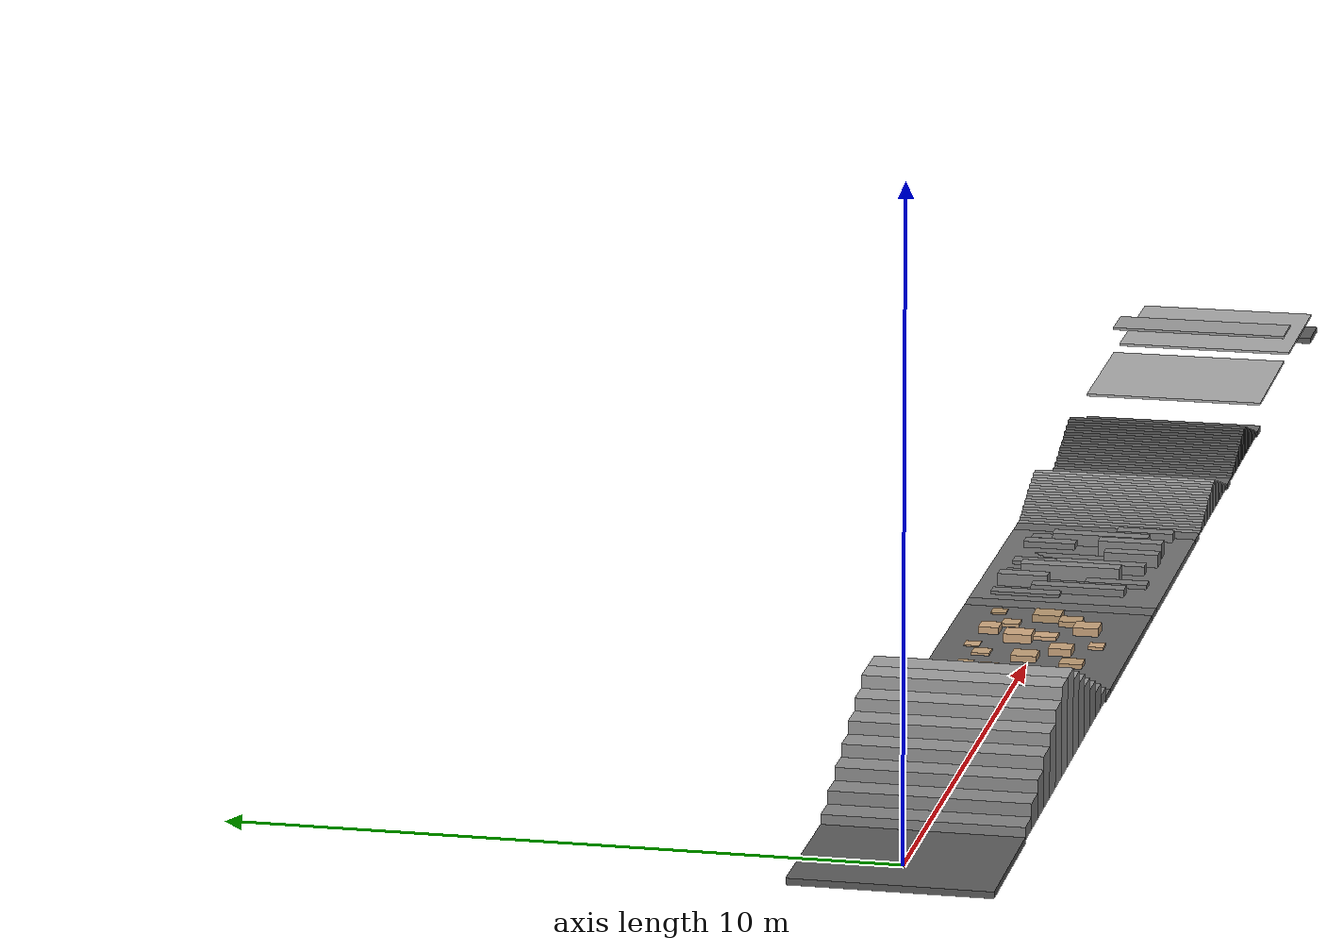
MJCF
<?xml version="1.0" encoding="UTF-8" ?>
<mujoco model="multi_terrain_course">
    <default>
        <default class="terrain">
            <geom type="box" contype="1" conaffinity="1" condim="3" friction="1 0.01 0.01" rgba="0.55 0.55 0.55 1"/>
        </default>
    </default>

    <worldbody>

        <geom name="start_pad" class="terrain" pos="0.25 0 0" size="1.25 1.5 0.05" rgba="0.36 0.36 0.36 1"/>

        <!-- single stairs: up 7 and down 7, 0.2 height difference -->
        <geom name="pyramid_stairs_1" class="terrain" pos="1.75 0 0.1" size="0.25 1.5 0.1" rgba="0.52 0.52 0.52 1"/>
        <geom name="pyramid_stairs_2" class="terrain" pos="2.25 0 0.2" size="0.25 1.5 0.2" rgba="0.54 0.54 0.54 1"/>
        <geom name="pyramid_stairs_3" class="terrain" pos="2.75 0 0.3" size="0.25 1.5 0.3" rgba="0.56 0.56 0.56 1"/>
        <geom name="pyramid_stairs_4" class="terrain" pos="3.25 0 0.4" size="0.25 1.5 0.4" rgba="0.58 0.58 0.58 1"/>
        <geom name="pyramid_stairs_5" class="terrain" pos="3.75 0 0.5" size="0.25 1.5 0.5" rgba="0.60 0.60 0.60 1"/>
        <geom name="pyramid_stairs_6" class="terrain" pos="4.25 0 0.6" size="0.25 1.5 0.6" rgba="0.62 0.62 0.62 1"/>
        <geom name="pyramid_stairs_7" class="terrain" pos="4.75 0 0.7" size="0.25 1.5 0.7" rgba="0.64 0.64 0.64 1"/>
        <geom name="pyramid_stairs_8" class="terrain" pos="5.25 0 0.7" size="0.25 1.5 0.7" rgba="0.64 0.64 0.64 1"/>
        <geom name="pyramid_stairs_9" class="terrain" pos="5.75 0 0.6" size="0.25 1.5 0.6" rgba="0.62 0.62 0.62 1"/>
        <geom name="pyramid_stairs_10" class="terrain" pos="6.25 0 0.5" size="0.25 1.5 0.5" rgba="0.60 0.60 0.60 1"/>
        <geom name="pyramid_stairs_11" class="terrain" pos="6.75 0 0.4" size="0.25 1.5 0.4" rgba="0.58 0.58 0.58 1"/>
        <geom name="pyramid_stairs_12" class="terrain" pos="7.25 0 0.3" size="0.25 1.5 0.3" rgba="0.56 0.56 0.56 1"/>
        <geom name="pyramid_stairs_13" class="terrain" pos="7.75 0 0.2" size="0.25 1.5 0.2" rgba="0.54 0.54 0.54 1"/>
        <geom name="pyramid_stairs_14" class="terrain" pos="8.25 0 0.1" size="0.25 1.5 0.1" rgba="0.52 0.52 0.52 1"/>
        <geom name="gap_stairs_boxes" class="terrain" pos="8.7 0 0" size="0.20 1.5 0.05" rgba="0.42 0.42 0.42 1"/>

        <!-- boxes, kept moderate to avoid getting stuck -->
        <geom name="boxes_floor" class="terrain" pos="10.9 0 0" size="2.0 1.5 0.05" rgba="0.40 0.40 0.40 1"/>
        <geom name="boxes_1" class="terrain" pos="9.20 -0.90 0.025" size="0.12 0.12 0.025" rgba="0.70 0.58 0.42 1"/>
        <geom name="boxes_2" class="terrain" pos="9.42 -0.28 0.04" size="0.14 0.16 0.04" rgba="0.72 0.59 0.43 1"/>
        <geom name="boxes_3" class="terrain" pos="9.60 0.52 0.05" size="0.14 0.14 0.05" rgba="0.74 0.61 0.45 1"/>
        <geom name="boxes_4" class="terrain" pos="9.82 0.92 0.03" size="0.12 0.12 0.03" rgba="0.75 0.62 0.46 1"/>
        <geom name="boxes_5" class="terrain" pos="9.98 -0.72 0.06" size="0.16 0.18 0.06" rgba="0.76 0.62 0.46 1"/>
        <geom name="boxes_6" class="terrain" pos="10.18 0.05 0.075" size="0.18 0.20 0.075" rgba="0.78 0.64 0.48 1"/>
        <geom name="boxes_7" class="terrain" pos="10.36 0.76 0.045" size="0.14 0.14 0.045" rgba="0.79 0.65 0.49 1"/>
        <geom name="boxes_8" class="terrain" pos="10.58 -0.45 0.085" size="0.16 0.18 0.085" rgba="0.80 0.65 0.49 1"/>
        <geom name="boxes_9" class="terrain" pos="10.78 0.98 0.035" size="0.12 0.12 0.035" rgba="0.81 0.66 0.50 1"/>
        <geom name="boxes_10" class="terrain" pos="10.98 -0.94 0.05" size="0.12 0.12 0.05" rgba="0.82 0.66 0.50 1"/>
        <geom name="boxes_11" class="terrain" pos="11.16 0.32 0.095" size="0.18 0.22 0.095" rgba="0.83 0.67 0.51 1"/>
        <geom name="boxes_12" class="terrain" pos="11.34 -0.08 0.055" size="0.14 0.18 0.055" rgba="0.84 0.68 0.52 1"/>
        <geom name="boxes_13" class="terrain" pos="11.54 0.84 0.08" size="0.16 0.16 0.08" rgba="0.82 0.66 0.50 1"/>
        <geom name="boxes_14" class="terrain" pos="11.74 -0.66 0.09" size="0.18 0.20 0.09" rgba="0.80 0.65 0.49 1"/>
        <geom name="boxes_15" class="terrain" pos="11.96 0.58 0.05" size="0.14 0.14 0.05" rgba="0.78 0.64 0.48 1"/>
        <geom name="boxes_16" class="terrain" pos="12.14 -0.34 0.07" size="0.16 0.18 0.07" rgba="0.76 0.62 0.46 1"/>
        <geom name="boxes_17" class="terrain" pos="12.34 0.06 0.085" size="0.18 0.22 0.085" rgba="0.74 0.61 0.45 1"/>
        <geom name="boxes_18" class="terrain" pos="12.58 0.88 0.04" size="0.12 0.12 0.04" rgba="0.72 0.59 0.43 1"/>
        <geom name="gap_boxes_rough" class="terrain" pos="13.1 0 0" size="0.20 1.5 0.05" rgba="0.42 0.42 0.42 1"/>

        <!-- random_rough -->
        <geom name="rough_floor" class="terrain" pos="15.3 0 0" size="2.0 1.5 0.05" rgba="0.45 0.45 0.45 1"/>
        <geom name="rough_01" class="terrain" pos="13.425 -0.75 0.015" size="0.125 0.45 0.015" rgba="0.46 0.46 0.46 1"/>
        <geom name="rough_02" class="terrain" pos="13.675 0.65 0.05" size="0.125 0.55 0.05" rgba="0.48 0.48 0.48 1"/>
        <geom name="rough_03" class="terrain" pos="13.925 -0.15 0.085" size="0.125 0.75 0.085" rgba="0.50 0.50 0.50 1"/>
        <geom name="rough_04" class="terrain" pos="14.175 0.78 0.125" size="0.125 0.4 0.125" rgba="0.52 0.52 0.52 1"/>
        <geom name="rough_05" class="terrain" pos="14.425 -0.68 0.06" size="0.125 0.5 0.06" rgba="0.49 0.49 0.49 1"/>
        <geom name="rough_06" class="terrain" pos="14.675 0.1 0.145" size="0.125 0.8 0.145" rgba="0.54 0.54 0.54 1"/>
        <geom name="rough_07" class="terrain" pos="14.925 0.82 0.03" size="0.125 0.38 0.03" rgba="0.47 0.47 0.47 1"/>
        <geom name="rough_08" class="terrain" pos="15.175 -0.3 0.1" size="0.125 0.72 0.1" rgba="0.51 0.51 0.51 1"/>
        <geom name="rough_09" class="terrain" pos="15.425 0.68 0.055" size="0.125 0.48 0.055" rgba="0.49 0.49 0.49 1"/>
        <geom name="rough_10" class="terrain" pos="15.675 -0.72 0.13" size="0.125 0.44 0.13" rgba="0.52 0.52 0.52 1"/>
        <geom name="rough_11" class="terrain" pos="15.925 0.18 0.025" size="0.125 0.82 0.025" rgba="0.46 0.46 0.46 1"/>
        <geom name="rough_12" class="terrain" pos="16.175 -0.62 0.15" size="0.125 0.52 0.15" rgba="0.53 0.53 0.53 1"/>
        <geom name="rough_13" class="terrain" pos="16.425 0.74 0.075" size="0.125 0.42 0.075" rgba="0.50 0.50 0.50 1"/>
        <geom name="rough_14" class="terrain" pos="16.675 -0.05 0.12" size="0.125 0.78 0.12" rgba="0.52 0.52 0.52 1"/>
        <geom name="rough_15" class="terrain" pos="16.925 0.62 0.04" size="0.125 0.5 0.04" rgba="0.48 0.48 0.48 1"/>
        <geom name="rough_16" class="terrain" pos="17.175 -0.7 0.095" size="0.125 0.46 0.095" rgba="0.51 0.51 0.51 1"/>
        <geom name="gap_rough_hf" class="terrain" pos="17.5 0 0" size="0.20 1.5 0.05" rgba="0.42 0.42 0.42 1"/>

        <!-- hf_pyramid_slope, longer, steeper, peak 0.5 -->
        <geom name="hf_pyramid_slope_01" class="terrain" pos="17.775 0 0.025" size="0.075 1.5 0.025" rgba="0.57 0.57 0.57 1"/>
        <geom name="hf_pyramid_slope_02" class="terrain" pos="17.925 0 0.05" size="0.075 1.5 0.05" rgba="0.58 0.58 0.58 1"/>
        <geom name="hf_pyramid_slope_03" class="terrain" pos="18.075 0 0.075" size="0.075 1.5 0.075" rgba="0.59 0.59 0.59 1"/>
        <geom name="hf_pyramid_slope_04" class="terrain" pos="18.225 0 0.1" size="0.075 1.5 0.1" rgba="0.6 0.6 0.6 1"/>
        <geom name="hf_pyramid_slope_05" class="terrain" pos="18.375 0 0.125" size="0.075 1.5 0.125" rgba="0.61 0.61 0.61 1"/>
        <geom name="hf_pyramid_slope_06" class="terrain" pos="18.525 0 0.15" size="0.075 1.5 0.15" rgba="0.62 0.62 0.62 1"/>
        <geom name="hf_pyramid_slope_07" class="terrain" pos="18.675 0 0.175" size="0.075 1.5 0.175" rgba="0.63 0.63 0.63 1"/>
        <geom name="hf_pyramid_slope_08" class="terrain" pos="18.825 0 0.2" size="0.075 1.5 0.2" rgba="0.64 0.64 0.64 1"/>
        <geom name="hf_pyramid_slope_09" class="terrain" pos="18.975 0 0.225" size="0.075 1.5 0.225" rgba="0.65 0.65 0.65 1"/>
        <geom name="hf_pyramid_slope_10" class="terrain" pos="19.125 0 0.25" size="0.075 1.5 0.25" rgba="0.66 0.66 0.66 1"/>
        <geom name="hf_pyramid_slope_11" class="terrain" pos="19.275 0 0.25" size="0.075 1.5 0.25" rgba="0.66 0.66 0.66 1"/>
        <geom name="hf_pyramid_slope_12" class="terrain" pos="19.425 0 0.225" size="0.075 1.5 0.225" rgba="0.65 0.65 0.65 1"/>
        <geom name="hf_pyramid_slope_13" class="terrain" pos="19.575 0 0.2" size="0.075 1.5 0.2" rgba="0.64 0.64 0.64 1"/>
        <geom name="hf_pyramid_slope_14" class="terrain" pos="19.725 0 0.175" size="0.075 1.5 0.175" rgba="0.63 0.63 0.63 1"/>
        <geom name="hf_pyramid_slope_15" class="terrain" pos="19.875 0 0.15" size="0.075 1.5 0.15" rgba="0.62 0.62 0.62 1"/>
        <geom name="hf_pyramid_slope_16" class="terrain" pos="20.025 0 0.125" size="0.075 1.5 0.125" rgba="0.61 0.61 0.61 1"/>
        <geom name="hf_pyramid_slope_17" class="terrain" pos="20.175 0 0.1" size="0.075 1.5 0.1" rgba="0.6 0.6 0.6 1"/>
        <geom name="hf_pyramid_slope_18" class="terrain" pos="20.325 0 0.075" size="0.075 1.5 0.075" rgba="0.59 0.59 0.59 1"/>
        <geom name="hf_pyramid_slope_19" class="terrain" pos="20.475 0 0.05" size="0.075 1.5 0.05" rgba="0.58 0.58 0.58 1"/>
        <geom name="hf_pyramid_slope_20" class="terrain" pos="20.625 0 0.025" size="0.075 1.5 0.025" rgba="0.57 0.57 0.57 1"/>
        <geom name="gap_hf_hf_inv" class="terrain" pos="20.9 0 0" size="0.20 1.5 0.05" rgba="0.42 0.42 0.42 1"/>

        <!-- hf_pyramid_slope_inv, same peak and length -->
        <geom name="hf_pyramid_slope_inv_01" class="terrain" pos="21.175 0 0.025" size="0.075 1.5 0.025" rgba="0.43 0.43 0.43 1"/>
        <geom name="hf_pyramid_slope_inv_02" class="terrain" pos="21.325 0 0.05" size="0.075 1.5 0.05" rgba="0.42 0.42 0.42 1"/>
        <geom name="hf_pyramid_slope_inv_03" class="terrain" pos="21.475 0 0.075" size="0.075 1.5 0.075" rgba="0.41 0.41 0.41 1"/>
        <geom name="hf_pyramid_slope_inv_04" class="terrain" pos="21.625 0 0.1" size="0.075 1.5 0.1" rgba="0.4 0.4 0.4 1"/>
        <geom name="hf_pyramid_slope_inv_05" class="terrain" pos="21.775 0 0.125" size="0.075 1.5 0.125" rgba="0.39 0.39 0.39 1"/>
        <geom name="hf_pyramid_slope_inv_06" class="terrain" pos="21.925 0 0.15" size="0.075 1.5 0.15" rgba="0.38 0.38 0.38 1"/>
        <geom name="hf_pyramid_slope_inv_07" class="terrain" pos="22.075 0 0.175" size="0.075 1.5 0.175" rgba="0.37 0.37 0.37 1"/>
        <geom name="hf_pyramid_slope_inv_08" class="terrain" pos="22.225 0 0.2" size="0.075 1.5 0.2" rgba="0.36 0.36 0.36 1"/>
        <geom name="hf_pyramid_slope_inv_09" class="terrain" pos="22.375 0 0.225" size="0.075 1.5 0.225" rgba="0.35 0.35 0.35 1"/>
        <geom name="hf_pyramid_slope_inv_10" class="terrain" pos="22.525 0 0.25" size="0.075 1.5 0.25" rgba="0.34 0.34 0.34 1"/>
        <geom name="hf_pyramid_slope_inv_11" class="terrain" pos="22.675 0 0.25" size="0.075 1.5 0.25" rgba="0.34 0.34 0.34 1"/>
        <geom name="hf_pyramid_slope_inv_12" class="terrain" pos="22.825 0 0.225" size="0.075 1.5 0.225" rgba="0.35 0.35 0.35 1"/>
        <geom name="hf_pyramid_slope_inv_13" class="terrain" pos="22.975 0 0.2" size="0.075 1.5 0.2" rgba="0.36 0.36 0.36 1"/>
        <geom name="hf_pyramid_slope_inv_14" class="terrain" pos="23.125 0 0.175" size="0.075 1.5 0.175" rgba="0.37 0.37 0.37 1"/>
        <geom name="hf_pyramid_slope_inv_15" class="terrain" pos="23.275 0 0.15" size="0.075 1.5 0.15" rgba="0.38 0.38 0.38 1"/>
        <geom name="hf_pyramid_slope_inv_16" class="terrain" pos="23.425 0 0.125" size="0.075 1.5 0.125" rgba="0.39 0.39 0.39 1"/>
        <geom name="hf_pyramid_slope_inv_17" class="terrain" pos="23.575 0 0.1" size="0.075 1.5 0.1" rgba="0.4 0.4 0.4 1"/>
        <geom name="hf_pyramid_slope_inv_18" class="terrain" pos="23.725 0 0.075" size="0.075 1.5 0.075" rgba="0.41 0.41 0.41 1"/>
        <geom name="hf_pyramid_slope_inv_19" class="terrain" pos="23.875 0 0.05" size="0.075 1.5 0.05" rgba="0.42 0.42 0.42 1"/>
        <geom name="hf_pyramid_slope_inv_20" class="terrain" pos="24.025 0 0.025" size="0.075 1.5 0.025" rgba="0.43 0.43 0.43 1"/>
        <geom name="gap_hf_inv_slope" class="terrain" pos="24.3 0 0" size="0.20 1.5 0.05" rgba="0.42 0.42 0.42 1"/>

        <!-- 20 degree ramp, length doubled and connected, radians -->
        <geom name="slope20_up" class="terrain" pos="25.8224 0 0.46" size="1.4 1.5 0.02" euler="0 -0.349066 0" rgba="0.68 0.68 0.68 1"/>
        <geom name="slope20_top" class="terrain" pos="27.5311 0 0.9377" size="0.4 1.5 0.02" rgba="0.62 0.62 0.62 1"/>
        <geom name="slope20_down" class="terrain" pos="29.2399 0 0.46" size="1.4 1.5 0.02" euler="0 0.349066 0" rgba="0.68 0.68 0.68 1"/>

        <geom name="end_pad" class="terrain" pos="30.96 0 0" size="0.4 1.5 0.05" rgba="0.36 0.36 0.36 1"/>
    </worldbody>
</mujoco>
